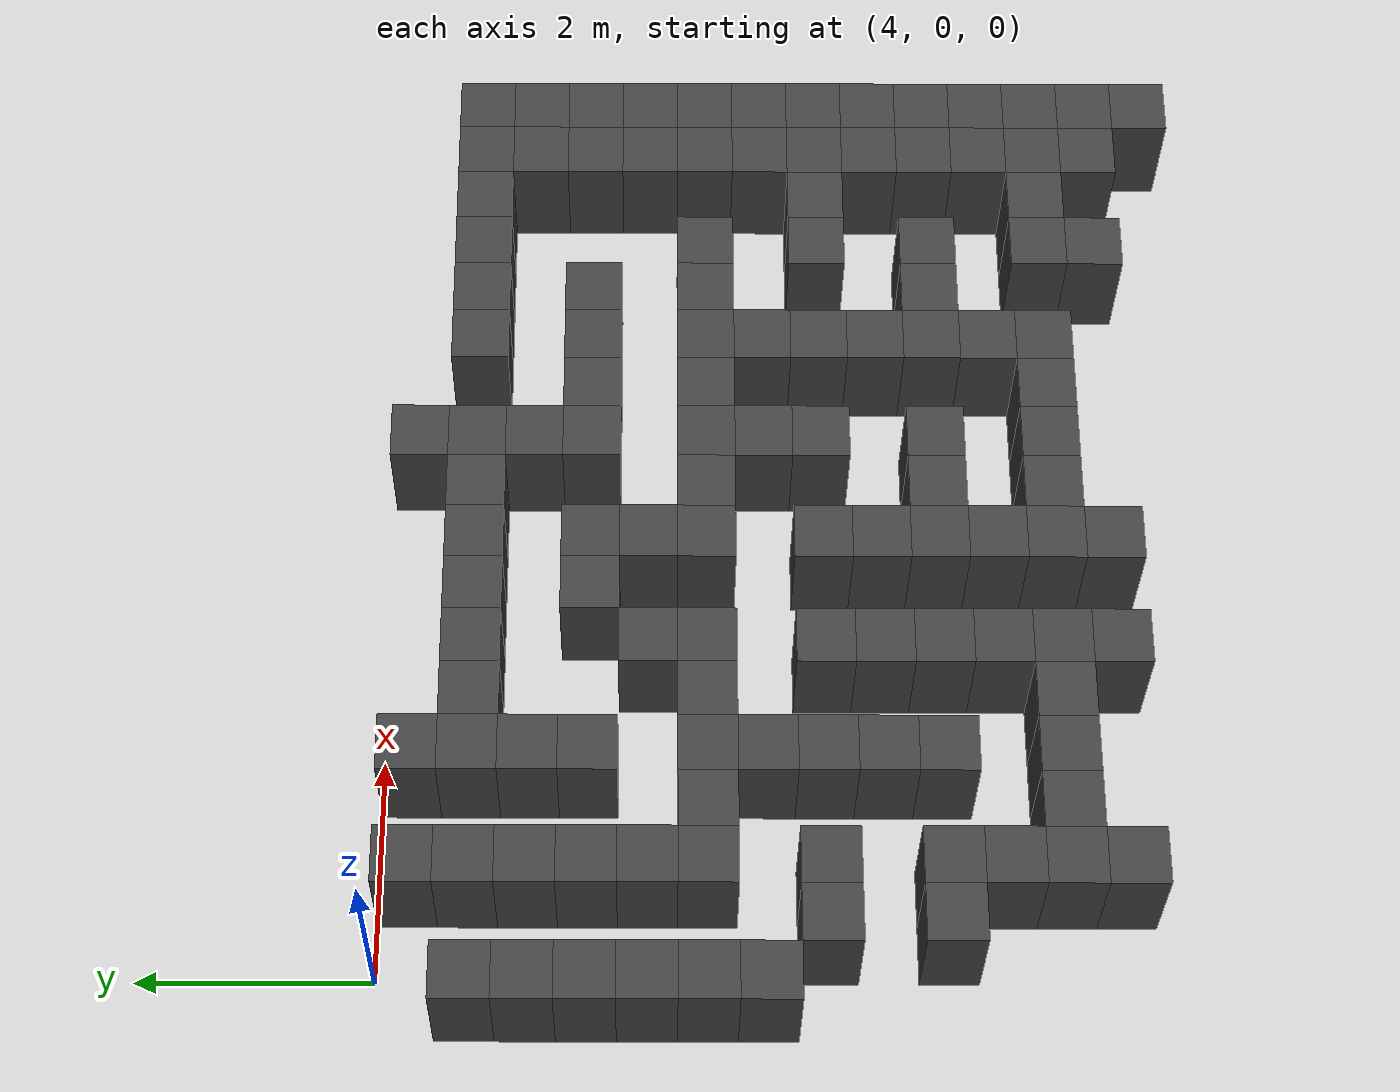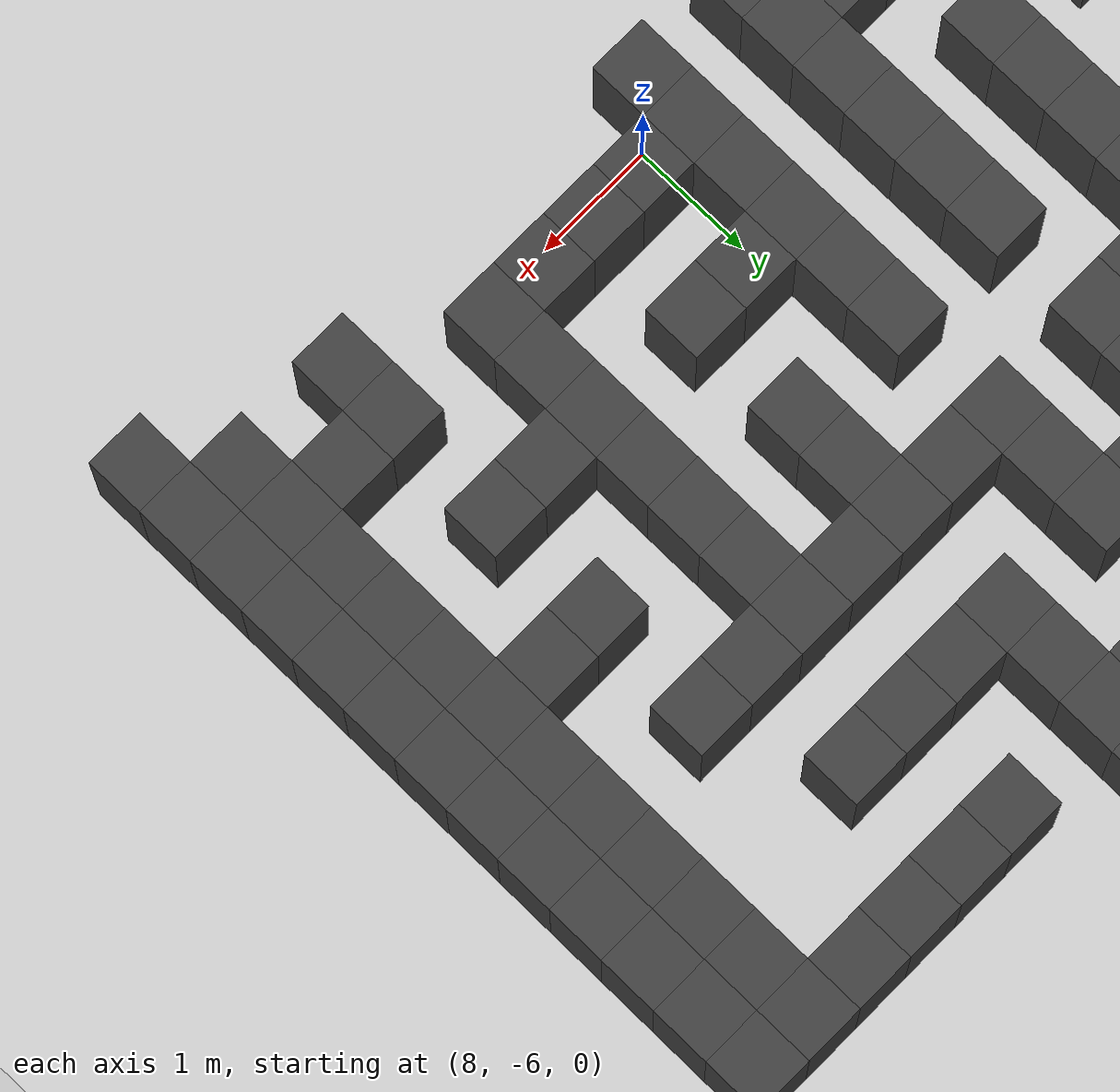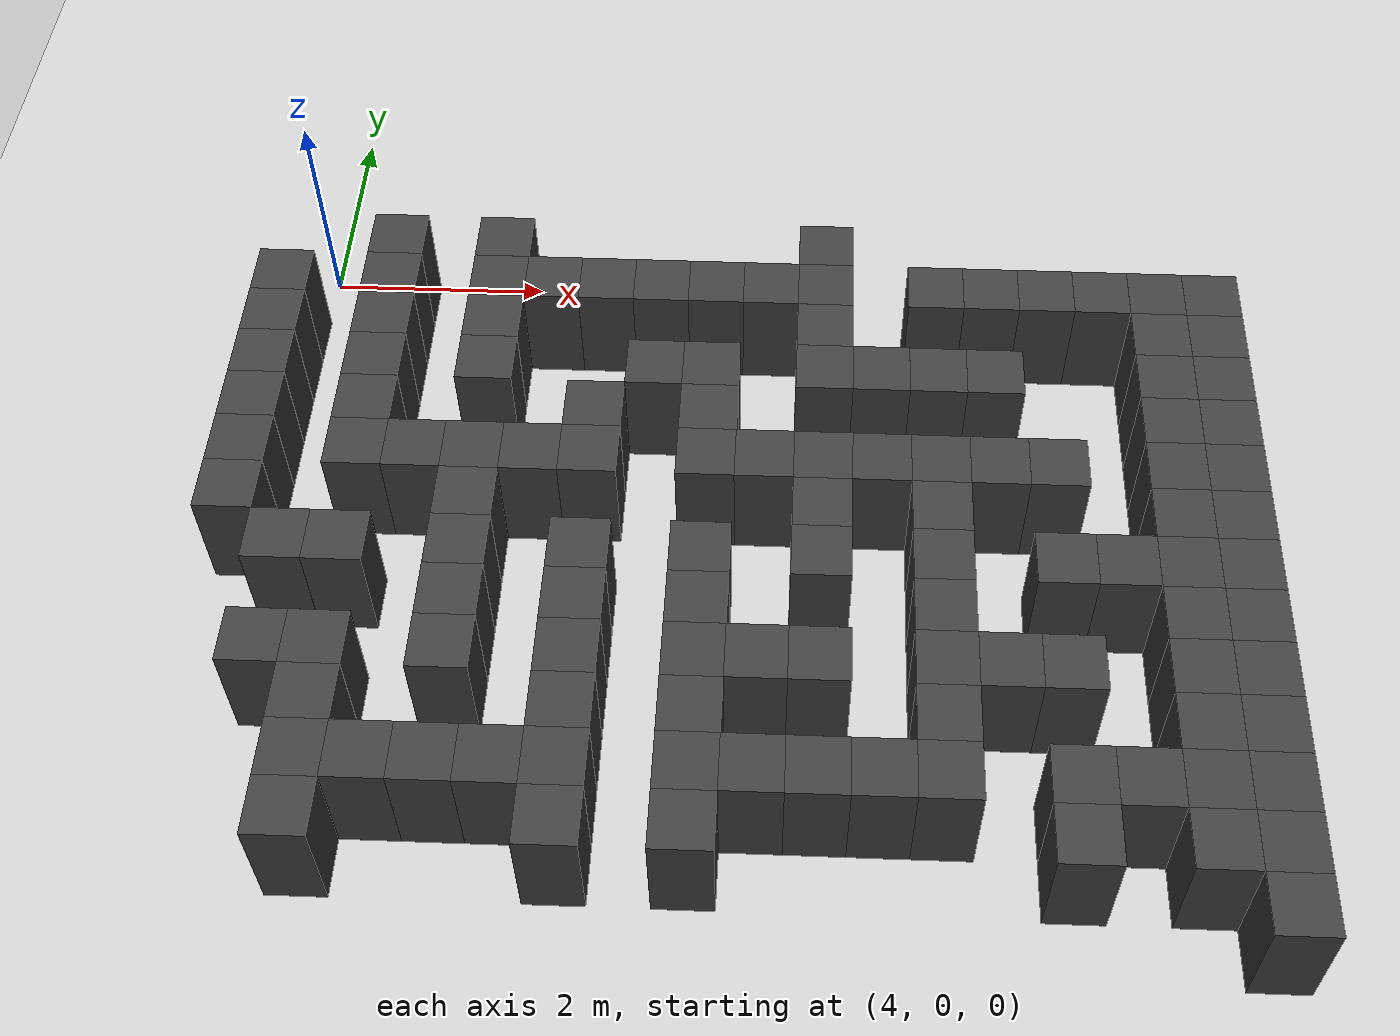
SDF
<sdf version="1.7">
 <world name="map_18505">
  <model name="ground_plane">
   <static>true</static>
   <link name="link">
    <collision name="collision">
     <geometry><plane><normal>0 0 1</normal><size>200 200</size></plane></geometry>
    </collision>
    <visual name="visual">
     <geometry><plane><normal>0 0 1</normal><size>200 200</size></plane></geometry>
     <material><ambient>0.8 0.8 0.8 1</ambient><diffuse>0.8 0.8 0.8 1</diffuse></material>
    </visual>
   </link>
  </model>
  <model name="maze_environment">
   <static>true</static>
   <link name="wall_659">
    <pose>4.750 -0.250 0.500 0 0 0</pose>
    <collision name="col"><geometry><box><size>0.5 0.5 1.0</size></box></geometry></collision>
    <visual name="vis">
     <geometry><box><size>0.5 0.5 1.0</size></box></geometry>
     <material><ambient>0.15 0.15 0.15 1</ambient><diffuse>0.25 0.25 0.25 1</diffuse></material>
    </visual>
   </link>
   <link name="wall_660">
    <pose>5.750 -0.250 0.500 0 0 0</pose>
    <collision name="col"><geometry><box><size>0.5 0.5 1.0</size></box></geometry></collision>
    <visual name="vis">
     <geometry><box><size>0.5 0.5 1.0</size></box></geometry>
     <material><ambient>0.15 0.15 0.15 1</ambient><diffuse>0.25 0.25 0.25 1</diffuse></material>
    </visual>
   </link>
   <link name="wall_661">
    <pose>8.750 -0.250 0.500 0 0 0</pose>
    <collision name="col"><geometry><box><size>0.5 0.5 1.0</size></box></geometry></collision>
    <visual name="vis">
     <geometry><box><size>0.5 0.5 1.0</size></box></geometry>
     <material><ambient>0.15 0.15 0.15 1</ambient><diffuse>0.25 0.25 0.25 1</diffuse></material>
    </visual>
   </link>
   <link name="wall_684">
    <pose>3.750 -0.750 0.500 0 0 0</pose>
    <collision name="col"><geometry><box><size>0.5 0.5 1.0</size></box></geometry></collision>
    <visual name="vis">
     <geometry><box><size>0.5 0.5 1.0</size></box></geometry>
     <material><ambient>0.15 0.15 0.15 1</ambient><diffuse>0.25 0.25 0.25 1</diffuse></material>
    </visual>
   </link>
   <link name="wall_685">
    <pose>4.750 -0.750 0.500 0 0 0</pose>
    <collision name="col"><geometry><box><size>0.5 0.5 1.0</size></box></geometry></collision>
    <visual name="vis">
     <geometry><box><size>0.5 0.5 1.0</size></box></geometry>
     <material><ambient>0.15 0.15 0.15 1</ambient><diffuse>0.25 0.25 0.25 1</diffuse></material>
    </visual>
   </link>
   <link name="wall_686">
    <pose>5.750 -0.750 0.500 0 0 0</pose>
    <collision name="col"><geometry><box><size>0.5 0.5 1.0</size></box></geometry></collision>
    <visual name="vis">
     <geometry><box><size>0.5 0.5 1.0</size></box></geometry>
     <material><ambient>0.15 0.15 0.15 1</ambient><diffuse>0.25 0.25 0.25 1</diffuse></material>
    </visual>
   </link>
   <link name="wall_687">
    <pose>6.250 -0.750 0.500 0 0 0</pose>
    <collision name="col"><geometry><box><size>0.5 0.5 1.0</size></box></geometry></collision>
    <visual name="vis">
     <geometry><box><size>0.5 0.5 1.0</size></box></geometry>
     <material><ambient>0.15 0.15 0.15 1</ambient><diffuse>0.25 0.25 0.25 1</diffuse></material>
    </visual>
   </link>
   <link name="wall_688">
    <pose>6.750 -0.750 0.500 0 0 0</pose>
    <collision name="col"><geometry><box><size>0.5 0.5 1.0</size></box></geometry></collision>
    <visual name="vis">
     <geometry><box><size>0.5 0.5 1.0</size></box></geometry>
     <material><ambient>0.15 0.15 0.15 1</ambient><diffuse>0.25 0.25 0.25 1</diffuse></material>
    </visual>
   </link>
   <link name="wall_689">
    <pose>7.250 -0.750 0.500 0 0 0</pose>
    <collision name="col"><geometry><box><size>0.5 0.5 1.0</size></box></geometry></collision>
    <visual name="vis">
     <geometry><box><size>0.5 0.5 1.0</size></box></geometry>
     <material><ambient>0.15 0.15 0.15 1</ambient><diffuse>0.25 0.25 0.25 1</diffuse></material>
    </visual>
   </link>
   <link name="wall_690">
    <pose>7.750 -0.750 0.500 0 0 0</pose>
    <collision name="col"><geometry><box><size>0.5 0.5 1.0</size></box></geometry></collision>
    <visual name="vis">
     <geometry><box><size>0.5 0.5 1.0</size></box></geometry>
     <material><ambient>0.15 0.15 0.15 1</ambient><diffuse>0.25 0.25 0.25 1</diffuse></material>
    </visual>
   </link>
   <link name="wall_691">
    <pose>8.250 -0.750 0.500 0 0 0</pose>
    <collision name="col"><geometry><box><size>0.5 0.5 1.0</size></box></geometry></collision>
    <visual name="vis">
     <geometry><box><size>0.5 0.5 1.0</size></box></geometry>
     <material><ambient>0.15 0.15 0.15 1</ambient><diffuse>0.25 0.25 0.25 1</diffuse></material>
    </visual>
   </link>
   <link name="wall_692">
    <pose>8.750 -0.750 0.500 0 0 0</pose>
    <collision name="col"><geometry><box><size>0.5 0.5 1.0</size></box></geometry></collision>
    <visual name="vis">
     <geometry><box><size>0.5 0.5 1.0</size></box></geometry>
     <material><ambient>0.15 0.15 0.15 1</ambient><diffuse>0.25 0.25 0.25 1</diffuse></material>
    </visual>
   </link>
   <link name="wall_693">
    <pose>9.750 -0.750 0.500 0 0 0</pose>
    <collision name="col"><geometry><box><size>0.5 0.5 1.0</size></box></geometry></collision>
    <visual name="vis">
     <geometry><box><size>0.5 0.5 1.0</size></box></geometry>
     <material><ambient>0.15 0.15 0.15 1</ambient><diffuse>0.25 0.25 0.25 1</diffuse></material>
    </visual>
   </link>
   <link name="wall_694">
    <pose>10.250 -0.750 0.500 0 0 0</pose>
    <collision name="col"><geometry><box><size>0.5 0.5 1.0</size></box></geometry></collision>
    <visual name="vis">
     <geometry><box><size>0.5 0.5 1.0</size></box></geometry>
     <material><ambient>0.15 0.15 0.15 1</ambient><diffuse>0.25 0.25 0.25 1</diffuse></material>
    </visual>
   </link>
   <link name="wall_695">
    <pose>10.750 -0.750 0.500 0 0 0</pose>
    <collision name="col"><geometry><box><size>0.5 0.5 1.0</size></box></geometry></collision>
    <visual name="vis">
     <geometry><box><size>0.5 0.5 1.0</size></box></geometry>
     <material><ambient>0.15 0.15 0.15 1</ambient><diffuse>0.25 0.25 0.25 1</diffuse></material>
    </visual>
   </link>
   <link name="wall_696">
    <pose>11.250 -0.750 0.500 0 0 0</pose>
    <collision name="col"><geometry><box><size>0.5 0.5 1.0</size></box></geometry></collision>
    <visual name="vis">
     <geometry><box><size>0.5 0.5 1.0</size></box></geometry>
     <material><ambient>0.15 0.15 0.15 1</ambient><diffuse>0.25 0.25 0.25 1</diffuse></material>
    </visual>
   </link>
   <link name="wall_697">
    <pose>11.750 -0.750 0.500 0 0 0</pose>
    <collision name="col"><geometry><box><size>0.5 0.5 1.0</size></box></geometry></collision>
    <visual name="vis">
     <geometry><box><size>0.5 0.5 1.0</size></box></geometry>
     <material><ambient>0.15 0.15 0.15 1</ambient><diffuse>0.25 0.25 0.25 1</diffuse></material>
    </visual>
   </link>
   <link name="wall_698">
    <pose>12.250 -0.750 0.500 0 0 0</pose>
    <collision name="col"><geometry><box><size>0.5 0.5 1.0</size></box></geometry></collision>
    <visual name="vis">
     <geometry><box><size>0.5 0.5 1.0</size></box></geometry>
     <material><ambient>0.15 0.15 0.15 1</ambient><diffuse>0.25 0.25 0.25 1</diffuse></material>
    </visual>
   </link>
   <link name="wall_707">
    <pose>3.750 -1.250 0.500 0 0 0</pose>
    <collision name="col"><geometry><box><size>0.5 0.5 1.0</size></box></geometry></collision>
    <visual name="vis">
     <geometry><box><size>0.5 0.5 1.0</size></box></geometry>
     <material><ambient>0.15 0.15 0.15 1</ambient><diffuse>0.25 0.25 0.25 1</diffuse></material>
    </visual>
   </link>
   <link name="wall_708">
    <pose>4.750 -1.250 0.500 0 0 0</pose>
    <collision name="col"><geometry><box><size>0.5 0.5 1.0</size></box></geometry></collision>
    <visual name="vis">
     <geometry><box><size>0.5 0.5 1.0</size></box></geometry>
     <material><ambient>0.15 0.15 0.15 1</ambient><diffuse>0.25 0.25 0.25 1</diffuse></material>
    </visual>
   </link>
   <link name="wall_709">
    <pose>5.750 -1.250 0.500 0 0 0</pose>
    <collision name="col"><geometry><box><size>0.5 0.5 1.0</size></box></geometry></collision>
    <visual name="vis">
     <geometry><box><size>0.5 0.5 1.0</size></box></geometry>
     <material><ambient>0.15 0.15 0.15 1</ambient><diffuse>0.25 0.25 0.25 1</diffuse></material>
    </visual>
   </link>
   <link name="wall_710">
    <pose>8.750 -1.250 0.500 0 0 0</pose>
    <collision name="col"><geometry><box><size>0.5 0.5 1.0</size></box></geometry></collision>
    <visual name="vis">
     <geometry><box><size>0.5 0.5 1.0</size></box></geometry>
     <material><ambient>0.15 0.15 0.15 1</ambient><diffuse>0.25 0.25 0.25 1</diffuse></material>
    </visual>
   </link>
   <link name="wall_711">
    <pose>11.750 -1.250 0.500 0 0 0</pose>
    <collision name="col"><geometry><box><size>0.5 0.5 1.0</size></box></geometry></collision>
    <visual name="vis">
     <geometry><box><size>0.5 0.5 1.0</size></box></geometry>
     <material><ambient>0.15 0.15 0.15 1</ambient><diffuse>0.25 0.25 0.25 1</diffuse></material>
    </visual>
   </link>
   <link name="wall_712">
    <pose>12.250 -1.250 0.500 0 0 0</pose>
    <collision name="col"><geometry><box><size>0.5 0.5 1.0</size></box></geometry></collision>
    <visual name="vis">
     <geometry><box><size>0.5 0.5 1.0</size></box></geometry>
     <material><ambient>0.15 0.15 0.15 1</ambient><diffuse>0.25 0.25 0.25 1</diffuse></material>
    </visual>
   </link>
   <link name="wall_737">
    <pose>3.750 -1.750 0.500 0 0 0</pose>
    <collision name="col"><geometry><box><size>0.5 0.5 1.0</size></box></geometry></collision>
    <visual name="vis">
     <geometry><box><size>0.5 0.5 1.0</size></box></geometry>
     <material><ambient>0.15 0.15 0.15 1</ambient><diffuse>0.25 0.25 0.25 1</diffuse></material>
    </visual>
   </link>
   <link name="wall_738">
    <pose>4.750 -1.750 0.500 0 0 0</pose>
    <collision name="col"><geometry><box><size>0.5 0.5 1.0</size></box></geometry></collision>
    <visual name="vis">
     <geometry><box><size>0.5 0.5 1.0</size></box></geometry>
     <material><ambient>0.15 0.15 0.15 1</ambient><diffuse>0.25 0.25 0.25 1</diffuse></material>
    </visual>
   </link>
   <link name="wall_739">
    <pose>5.750 -1.750 0.500 0 0 0</pose>
    <collision name="col"><geometry><box><size>0.5 0.5 1.0</size></box></geometry></collision>
    <visual name="vis">
     <geometry><box><size>0.5 0.5 1.0</size></box></geometry>
     <material><ambient>0.15 0.15 0.15 1</ambient><diffuse>0.25 0.25 0.25 1</diffuse></material>
    </visual>
   </link>
   <link name="wall_740">
    <pose>7.250 -1.750 0.500 0 0 0</pose>
    <collision name="col"><geometry><box><size>0.5 0.5 1.0</size></box></geometry></collision>
    <visual name="vis">
     <geometry><box><size>0.5 0.5 1.0</size></box></geometry>
     <material><ambient>0.15 0.15 0.15 1</ambient><diffuse>0.25 0.25 0.25 1</diffuse></material>
    </visual>
   </link>
   <link name="wall_741">
    <pose>7.750 -1.750 0.500 0 0 0</pose>
    <collision name="col"><geometry><box><size>0.5 0.5 1.0</size></box></geometry></collision>
    <visual name="vis">
     <geometry><box><size>0.5 0.5 1.0</size></box></geometry>
     <material><ambient>0.15 0.15 0.15 1</ambient><diffuse>0.25 0.25 0.25 1</diffuse></material>
    </visual>
   </link>
   <link name="wall_742">
    <pose>8.750 -1.750 0.500 0 0 0</pose>
    <collision name="col"><geometry><box><size>0.5 0.5 1.0</size></box></geometry></collision>
    <visual name="vis">
     <geometry><box><size>0.5 0.5 1.0</size></box></geometry>
     <material><ambient>0.15 0.15 0.15 1</ambient><diffuse>0.25 0.25 0.25 1</diffuse></material>
    </visual>
   </link>
   <link name="wall_743">
    <pose>9.250 -1.750 0.500 0 0 0</pose>
    <collision name="col"><geometry><box><size>0.5 0.5 1.0</size></box></geometry></collision>
    <visual name="vis">
     <geometry><box><size>0.5 0.5 1.0</size></box></geometry>
     <material><ambient>0.15 0.15 0.15 1</ambient><diffuse>0.25 0.25 0.25 1</diffuse></material>
    </visual>
   </link>
   <link name="wall_744">
    <pose>9.750 -1.750 0.500 0 0 0</pose>
    <collision name="col"><geometry><box><size>0.5 0.5 1.0</size></box></geometry></collision>
    <visual name="vis">
     <geometry><box><size>0.5 0.5 1.0</size></box></geometry>
     <material><ambient>0.15 0.15 0.15 1</ambient><diffuse>0.25 0.25 0.25 1</diffuse></material>
    </visual>
   </link>
   <link name="wall_745">
    <pose>10.250 -1.750 0.500 0 0 0</pose>
    <collision name="col"><geometry><box><size>0.5 0.5 1.0</size></box></geometry></collision>
    <visual name="vis">
     <geometry><box><size>0.5 0.5 1.0</size></box></geometry>
     <material><ambient>0.15 0.15 0.15 1</ambient><diffuse>0.25 0.25 0.25 1</diffuse></material>
    </visual>
   </link>
   <link name="wall_746">
    <pose>11.750 -1.750 0.500 0 0 0</pose>
    <collision name="col"><geometry><box><size>0.5 0.5 1.0</size></box></geometry></collision>
    <visual name="vis">
     <geometry><box><size>0.5 0.5 1.0</size></box></geometry>
     <material><ambient>0.15 0.15 0.15 1</ambient><diffuse>0.25 0.25 0.25 1</diffuse></material>
    </visual>
   </link>
   <link name="wall_747">
    <pose>12.250 -1.750 0.500 0 0 0</pose>
    <collision name="col"><geometry><box><size>0.5 0.5 1.0</size></box></geometry></collision>
    <visual name="vis">
     <geometry><box><size>0.5 0.5 1.0</size></box></geometry>
     <material><ambient>0.15 0.15 0.15 1</ambient><diffuse>0.25 0.25 0.25 1</diffuse></material>
    </visual>
   </link>
   <link name="wall_753">
    <pose>3.750 -2.250 0.500 0 0 0</pose>
    <collision name="col"><geometry><box><size>0.5 0.5 1.0</size></box></geometry></collision>
    <visual name="vis">
     <geometry><box><size>0.5 0.5 1.0</size></box></geometry>
     <material><ambient>0.15 0.15 0.15 1</ambient><diffuse>0.25 0.25 0.25 1</diffuse></material>
    </visual>
   </link>
   <link name="wall_754">
    <pose>4.750 -2.250 0.500 0 0 0</pose>
    <collision name="col"><geometry><box><size>0.5 0.5 1.0</size></box></geometry></collision>
    <visual name="vis">
     <geometry><box><size>0.5 0.5 1.0</size></box></geometry>
     <material><ambient>0.15 0.15 0.15 1</ambient><diffuse>0.25 0.25 0.25 1</diffuse></material>
    </visual>
   </link>
   <link name="wall_755">
    <pose>6.750 -2.250 0.500 0 0 0</pose>
    <collision name="col"><geometry><box><size>0.5 0.5 1.0</size></box></geometry></collision>
    <visual name="vis">
     <geometry><box><size>0.5 0.5 1.0</size></box></geometry>
     <material><ambient>0.15 0.15 0.15 1</ambient><diffuse>0.25 0.25 0.25 1</diffuse></material>
    </visual>
   </link>
   <link name="wall_756">
    <pose>7.750 -2.250 0.500 0 0 0</pose>
    <collision name="col"><geometry><box><size>0.5 0.5 1.0</size></box></geometry></collision>
    <visual name="vis">
     <geometry><box><size>0.5 0.5 1.0</size></box></geometry>
     <material><ambient>0.15 0.15 0.15 1</ambient><diffuse>0.25 0.25 0.25 1</diffuse></material>
    </visual>
   </link>
   <link name="wall_757">
    <pose>11.750 -2.250 0.500 0 0 0</pose>
    <collision name="col"><geometry><box><size>0.5 0.5 1.0</size></box></geometry></collision>
    <visual name="vis">
     <geometry><box><size>0.5 0.5 1.0</size></box></geometry>
     <material><ambient>0.15 0.15 0.15 1</ambient><diffuse>0.25 0.25 0.25 1</diffuse></material>
    </visual>
   </link>
   <link name="wall_758">
    <pose>12.250 -2.250 0.500 0 0 0</pose>
    <collision name="col"><geometry><box><size>0.5 0.5 1.0</size></box></geometry></collision>
    <visual name="vis">
     <geometry><box><size>0.5 0.5 1.0</size></box></geometry>
     <material><ambient>0.15 0.15 0.15 1</ambient><diffuse>0.25 0.25 0.25 1</diffuse></material>
    </visual>
   </link>
   <link name="wall_784">
    <pose>3.750 -2.750 0.500 0 0 0</pose>
    <collision name="col"><geometry><box><size>0.5 0.5 1.0</size></box></geometry></collision>
    <visual name="vis">
     <geometry><box><size>0.5 0.5 1.0</size></box></geometry>
     <material><ambient>0.15 0.15 0.15 1</ambient><diffuse>0.25 0.25 0.25 1</diffuse></material>
    </visual>
   </link>
   <link name="wall_785">
    <pose>4.750 -2.750 0.500 0 0 0</pose>
    <collision name="col"><geometry><box><size>0.5 0.5 1.0</size></box></geometry></collision>
    <visual name="vis">
     <geometry><box><size>0.5 0.5 1.0</size></box></geometry>
     <material><ambient>0.15 0.15 0.15 1</ambient><diffuse>0.25 0.25 0.25 1</diffuse></material>
    </visual>
   </link>
   <link name="wall_786">
    <pose>5.250 -2.750 0.500 0 0 0</pose>
    <collision name="col"><geometry><box><size>0.5 0.5 1.0</size></box></geometry></collision>
    <visual name="vis">
     <geometry><box><size>0.5 0.5 1.0</size></box></geometry>
     <material><ambient>0.15 0.15 0.15 1</ambient><diffuse>0.25 0.25 0.25 1</diffuse></material>
    </visual>
   </link>
   <link name="wall_787">
    <pose>5.750 -2.750 0.500 0 0 0</pose>
    <collision name="col"><geometry><box><size>0.5 0.5 1.0</size></box></geometry></collision>
    <visual name="vis">
     <geometry><box><size>0.5 0.5 1.0</size></box></geometry>
     <material><ambient>0.15 0.15 0.15 1</ambient><diffuse>0.25 0.25 0.25 1</diffuse></material>
    </visual>
   </link>
   <link name="wall_788">
    <pose>6.250 -2.750 0.500 0 0 0</pose>
    <collision name="col"><geometry><box><size>0.5 0.5 1.0</size></box></geometry></collision>
    <visual name="vis">
     <geometry><box><size>0.5 0.5 1.0</size></box></geometry>
     <material><ambient>0.15 0.15 0.15 1</ambient><diffuse>0.25 0.25 0.25 1</diffuse></material>
    </visual>
   </link>
   <link name="wall_789">
    <pose>6.750 -2.750 0.500 0 0 0</pose>
    <collision name="col"><geometry><box><size>0.5 0.5 1.0</size></box></geometry></collision>
    <visual name="vis">
     <geometry><box><size>0.5 0.5 1.0</size></box></geometry>
     <material><ambient>0.15 0.15 0.15 1</ambient><diffuse>0.25 0.25 0.25 1</diffuse></material>
    </visual>
   </link>
   <link name="wall_790">
    <pose>7.750 -2.750 0.500 0 0 0</pose>
    <collision name="col"><geometry><box><size>0.5 0.5 1.0</size></box></geometry></collision>
    <visual name="vis">
     <geometry><box><size>0.5 0.5 1.0</size></box></geometry>
     <material><ambient>0.15 0.15 0.15 1</ambient><diffuse>0.25 0.25 0.25 1</diffuse></material>
    </visual>
   </link>
   <link name="wall_791">
    <pose>8.250 -2.750 0.500 0 0 0</pose>
    <collision name="col"><geometry><box><size>0.5 0.5 1.0</size></box></geometry></collision>
    <visual name="vis">
     <geometry><box><size>0.5 0.5 1.0</size></box></geometry>
     <material><ambient>0.15 0.15 0.15 1</ambient><diffuse>0.25 0.25 0.25 1</diffuse></material>
    </visual>
   </link>
   <link name="wall_792">
    <pose>8.750 -2.750 0.500 0 0 0</pose>
    <collision name="col"><geometry><box><size>0.5 0.5 1.0</size></box></geometry></collision>
    <visual name="vis">
     <geometry><box><size>0.5 0.5 1.0</size></box></geometry>
     <material><ambient>0.15 0.15 0.15 1</ambient><diffuse>0.25 0.25 0.25 1</diffuse></material>
    </visual>
   </link>
   <link name="wall_793">
    <pose>9.250 -2.750 0.500 0 0 0</pose>
    <collision name="col"><geometry><box><size>0.5 0.5 1.0</size></box></geometry></collision>
    <visual name="vis">
     <geometry><box><size>0.5 0.5 1.0</size></box></geometry>
     <material><ambient>0.15 0.15 0.15 1</ambient><diffuse>0.25 0.25 0.25 1</diffuse></material>
    </visual>
   </link>
   <link name="wall_794">
    <pose>9.750 -2.750 0.500 0 0 0</pose>
    <collision name="col"><geometry><box><size>0.5 0.5 1.0</size></box></geometry></collision>
    <visual name="vis">
     <geometry><box><size>0.5 0.5 1.0</size></box></geometry>
     <material><ambient>0.15 0.15 0.15 1</ambient><diffuse>0.25 0.25 0.25 1</diffuse></material>
    </visual>
   </link>
   <link name="wall_795">
    <pose>10.250 -2.750 0.500 0 0 0</pose>
    <collision name="col"><geometry><box><size>0.5 0.5 1.0</size></box></geometry></collision>
    <visual name="vis">
     <geometry><box><size>0.5 0.5 1.0</size></box></geometry>
     <material><ambient>0.15 0.15 0.15 1</ambient><diffuse>0.25 0.25 0.25 1</diffuse></material>
    </visual>
   </link>
   <link name="wall_796">
    <pose>10.750 -2.750 0.500 0 0 0</pose>
    <collision name="col"><geometry><box><size>0.5 0.5 1.0</size></box></geometry></collision>
    <visual name="vis">
     <geometry><box><size>0.5 0.5 1.0</size></box></geometry>
     <material><ambient>0.15 0.15 0.15 1</ambient><diffuse>0.25 0.25 0.25 1</diffuse></material>
    </visual>
   </link>
   <link name="wall_797">
    <pose>11.750 -2.750 0.500 0 0 0</pose>
    <collision name="col"><geometry><box><size>0.5 0.5 1.0</size></box></geometry></collision>
    <visual name="vis">
     <geometry><box><size>0.5 0.5 1.0</size></box></geometry>
     <material><ambient>0.15 0.15 0.15 1</ambient><diffuse>0.25 0.25 0.25 1</diffuse></material>
    </visual>
   </link>
   <link name="wall_798">
    <pose>12.250 -2.750 0.500 0 0 0</pose>
    <collision name="col"><geometry><box><size>0.5 0.5 1.0</size></box></geometry></collision>
    <visual name="vis">
     <geometry><box><size>0.5 0.5 1.0</size></box></geometry>
     <material><ambient>0.15 0.15 0.15 1</ambient><diffuse>0.25 0.25 0.25 1</diffuse></material>
    </visual>
   </link>
   <link name="wall_805">
    <pose>3.750 -3.250 0.500 0 0 0</pose>
    <collision name="col"><geometry><box><size>0.5 0.5 1.0</size></box></geometry></collision>
    <visual name="vis">
     <geometry><box><size>0.5 0.5 1.0</size></box></geometry>
     <material><ambient>0.15 0.15 0.15 1</ambient><diffuse>0.25 0.25 0.25 1</diffuse></material>
    </visual>
   </link>
   <link name="wall_806">
    <pose>5.750 -3.250 0.500 0 0 0</pose>
    <collision name="col"><geometry><box><size>0.5 0.5 1.0</size></box></geometry></collision>
    <visual name="vis">
     <geometry><box><size>0.5 0.5 1.0</size></box></geometry>
     <material><ambient>0.15 0.15 0.15 1</ambient><diffuse>0.25 0.25 0.25 1</diffuse></material>
    </visual>
   </link>
   <link name="wall_807">
    <pose>8.750 -3.250 0.500 0 0 0</pose>
    <collision name="col"><geometry><box><size>0.5 0.5 1.0</size></box></geometry></collision>
    <visual name="vis">
     <geometry><box><size>0.5 0.5 1.0</size></box></geometry>
     <material><ambient>0.15 0.15 0.15 1</ambient><diffuse>0.25 0.25 0.25 1</diffuse></material>
    </visual>
   </link>
   <link name="wall_808">
    <pose>9.750 -3.250 0.500 0 0 0</pose>
    <collision name="col"><geometry><box><size>0.5 0.5 1.0</size></box></geometry></collision>
    <visual name="vis">
     <geometry><box><size>0.5 0.5 1.0</size></box></geometry>
     <material><ambient>0.15 0.15 0.15 1</ambient><diffuse>0.25 0.25 0.25 1</diffuse></material>
    </visual>
   </link>
   <link name="wall_809">
    <pose>11.750 -3.250 0.500 0 0 0</pose>
    <collision name="col"><geometry><box><size>0.5 0.5 1.0</size></box></geometry></collision>
    <visual name="vis">
     <geometry><box><size>0.5 0.5 1.0</size></box></geometry>
     <material><ambient>0.15 0.15 0.15 1</ambient><diffuse>0.25 0.25 0.25 1</diffuse></material>
    </visual>
   </link>
   <link name="wall_810">
    <pose>12.250 -3.250 0.500 0 0 0</pose>
    <collision name="col"><geometry><box><size>0.5 0.5 1.0</size></box></geometry></collision>
    <visual name="vis">
     <geometry><box><size>0.5 0.5 1.0</size></box></geometry>
     <material><ambient>0.15 0.15 0.15 1</ambient><diffuse>0.25 0.25 0.25 1</diffuse></material>
    </visual>
   </link>
   <link name="wall_835">
    <pose>4.250 -3.750 0.500 0 0 0</pose>
    <collision name="col"><geometry><box><size>0.5 0.5 1.0</size></box></geometry></collision>
    <visual name="vis">
     <geometry><box><size>0.5 0.5 1.0</size></box></geometry>
     <material><ambient>0.15 0.15 0.15 1</ambient><diffuse>0.25 0.25 0.25 1</diffuse></material>
    </visual>
   </link>
   <link name="wall_836">
    <pose>4.750 -3.750 0.500 0 0 0</pose>
    <collision name="col"><geometry><box><size>0.5 0.5 1.0</size></box></geometry></collision>
    <visual name="vis">
     <geometry><box><size>0.5 0.5 1.0</size></box></geometry>
     <material><ambient>0.15 0.15 0.15 1</ambient><diffuse>0.25 0.25 0.25 1</diffuse></material>
    </visual>
   </link>
   <link name="wall_837">
    <pose>5.750 -3.750 0.500 0 0 0</pose>
    <collision name="col"><geometry><box><size>0.5 0.5 1.0</size></box></geometry></collision>
    <visual name="vis">
     <geometry><box><size>0.5 0.5 1.0</size></box></geometry>
     <material><ambient>0.15 0.15 0.15 1</ambient><diffuse>0.25 0.25 0.25 1</diffuse></material>
    </visual>
   </link>
   <link name="wall_838">
    <pose>6.750 -3.750 0.500 0 0 0</pose>
    <collision name="col"><geometry><box><size>0.5 0.5 1.0</size></box></geometry></collision>
    <visual name="vis">
     <geometry><box><size>0.5 0.5 1.0</size></box></geometry>
     <material><ambient>0.15 0.15 0.15 1</ambient><diffuse>0.25 0.25 0.25 1</diffuse></material>
    </visual>
   </link>
   <link name="wall_839">
    <pose>7.750 -3.750 0.500 0 0 0</pose>
    <collision name="col"><geometry><box><size>0.5 0.5 1.0</size></box></geometry></collision>
    <visual name="vis">
     <geometry><box><size>0.5 0.5 1.0</size></box></geometry>
     <material><ambient>0.15 0.15 0.15 1</ambient><diffuse>0.25 0.25 0.25 1</diffuse></material>
    </visual>
   </link>
   <link name="wall_840">
    <pose>8.750 -3.750 0.500 0 0 0</pose>
    <collision name="col"><geometry><box><size>0.5 0.5 1.0</size></box></geometry></collision>
    <visual name="vis">
     <geometry><box><size>0.5 0.5 1.0</size></box></geometry>
     <material><ambient>0.15 0.15 0.15 1</ambient><diffuse>0.25 0.25 0.25 1</diffuse></material>
    </visual>
   </link>
   <link name="wall_841">
    <pose>9.750 -3.750 0.500 0 0 0</pose>
    <collision name="col"><geometry><box><size>0.5 0.5 1.0</size></box></geometry></collision>
    <visual name="vis">
     <geometry><box><size>0.5 0.5 1.0</size></box></geometry>
     <material><ambient>0.15 0.15 0.15 1</ambient><diffuse>0.25 0.25 0.25 1</diffuse></material>
    </visual>
   </link>
   <link name="wall_842">
    <pose>10.750 -3.750 0.500 0 0 0</pose>
    <collision name="col"><geometry><box><size>0.5 0.5 1.0</size></box></geometry></collision>
    <visual name="vis">
     <geometry><box><size>0.5 0.5 1.0</size></box></geometry>
     <material><ambient>0.15 0.15 0.15 1</ambient><diffuse>0.25 0.25 0.25 1</diffuse></material>
    </visual>
   </link>
   <link name="wall_843">
    <pose>11.250 -3.750 0.500 0 0 0</pose>
    <collision name="col"><geometry><box><size>0.5 0.5 1.0</size></box></geometry></collision>
    <visual name="vis">
     <geometry><box><size>0.5 0.5 1.0</size></box></geometry>
     <material><ambient>0.15 0.15 0.15 1</ambient><diffuse>0.25 0.25 0.25 1</diffuse></material>
    </visual>
   </link>
   <link name="wall_844">
    <pose>11.750 -3.750 0.500 0 0 0</pose>
    <collision name="col"><geometry><box><size>0.5 0.5 1.0</size></box></geometry></collision>
    <visual name="vis">
     <geometry><box><size>0.5 0.5 1.0</size></box></geometry>
     <material><ambient>0.15 0.15 0.15 1</ambient><diffuse>0.25 0.25 0.25 1</diffuse></material>
    </visual>
   </link>
   <link name="wall_845">
    <pose>12.250 -3.750 0.500 0 0 0</pose>
    <collision name="col"><geometry><box><size>0.5 0.5 1.0</size></box></geometry></collision>
    <visual name="vis">
     <geometry><box><size>0.5 0.5 1.0</size></box></geometry>
     <material><ambient>0.15 0.15 0.15 1</ambient><diffuse>0.25 0.25 0.25 1</diffuse></material>
    </visual>
   </link>
   <link name="wall_856">
    <pose>5.750 -4.250 0.500 0 0 0</pose>
    <collision name="col"><geometry><box><size>0.5 0.5 1.0</size></box></geometry></collision>
    <visual name="vis">
     <geometry><box><size>0.5 0.5 1.0</size></box></geometry>
     <material><ambient>0.15 0.15 0.15 1</ambient><diffuse>0.25 0.25 0.25 1</diffuse></material>
    </visual>
   </link>
   <link name="wall_857">
    <pose>6.750 -4.250 0.500 0 0 0</pose>
    <collision name="col"><geometry><box><size>0.5 0.5 1.0</size></box></geometry></collision>
    <visual name="vis">
     <geometry><box><size>0.5 0.5 1.0</size></box></geometry>
     <material><ambient>0.15 0.15 0.15 1</ambient><diffuse>0.25 0.25 0.25 1</diffuse></material>
    </visual>
   </link>
   <link name="wall_858">
    <pose>7.750 -4.250 0.500 0 0 0</pose>
    <collision name="col"><geometry><box><size>0.5 0.5 1.0</size></box></geometry></collision>
    <visual name="vis">
     <geometry><box><size>0.5 0.5 1.0</size></box></geometry>
     <material><ambient>0.15 0.15 0.15 1</ambient><diffuse>0.25 0.25 0.25 1</diffuse></material>
    </visual>
   </link>
   <link name="wall_859">
    <pose>9.750 -4.250 0.500 0 0 0</pose>
    <collision name="col"><geometry><box><size>0.5 0.5 1.0</size></box></geometry></collision>
    <visual name="vis">
     <geometry><box><size>0.5 0.5 1.0</size></box></geometry>
     <material><ambient>0.15 0.15 0.15 1</ambient><diffuse>0.25 0.25 0.25 1</diffuse></material>
    </visual>
   </link>
   <link name="wall_860">
    <pose>11.750 -4.250 0.500 0 0 0</pose>
    <collision name="col"><geometry><box><size>0.5 0.5 1.0</size></box></geometry></collision>
    <visual name="vis">
     <geometry><box><size>0.5 0.5 1.0</size></box></geometry>
     <material><ambient>0.15 0.15 0.15 1</ambient><diffuse>0.25 0.25 0.25 1</diffuse></material>
    </visual>
   </link>
   <link name="wall_861">
    <pose>12.250 -4.250 0.500 0 0 0</pose>
    <collision name="col"><geometry><box><size>0.5 0.5 1.0</size></box></geometry></collision>
    <visual name="vis">
     <geometry><box><size>0.5 0.5 1.0</size></box></geometry>
     <material><ambient>0.15 0.15 0.15 1</ambient><diffuse>0.25 0.25 0.25 1</diffuse></material>
    </visual>
   </link>
   <link name="wall_882">
    <pose>4.250 -4.750 0.500 0 0 0</pose>
    <collision name="col"><geometry><box><size>0.5 0.5 1.0</size></box></geometry></collision>
    <visual name="vis">
     <geometry><box><size>0.5 0.5 1.0</size></box></geometry>
     <material><ambient>0.15 0.15 0.15 1</ambient><diffuse>0.25 0.25 0.25 1</diffuse></material>
    </visual>
   </link>
   <link name="wall_883">
    <pose>4.750 -4.750 0.500 0 0 0</pose>
    <collision name="col"><geometry><box><size>0.5 0.5 1.0</size></box></geometry></collision>
    <visual name="vis">
     <geometry><box><size>0.5 0.5 1.0</size></box></geometry>
     <material><ambient>0.15 0.15 0.15 1</ambient><diffuse>0.25 0.25 0.25 1</diffuse></material>
    </visual>
   </link>
   <link name="wall_884">
    <pose>5.750 -4.750 0.500 0 0 0</pose>
    <collision name="col"><geometry><box><size>0.5 0.5 1.0</size></box></geometry></collision>
    <visual name="vis">
     <geometry><box><size>0.5 0.5 1.0</size></box></geometry>
     <material><ambient>0.15 0.15 0.15 1</ambient><diffuse>0.25 0.25 0.25 1</diffuse></material>
    </visual>
   </link>
   <link name="wall_885">
    <pose>6.750 -4.750 0.500 0 0 0</pose>
    <collision name="col"><geometry><box><size>0.5 0.5 1.0</size></box></geometry></collision>
    <visual name="vis">
     <geometry><box><size>0.5 0.5 1.0</size></box></geometry>
     <material><ambient>0.15 0.15 0.15 1</ambient><diffuse>0.25 0.25 0.25 1</diffuse></material>
    </visual>
   </link>
   <link name="wall_886">
    <pose>7.750 -4.750 0.500 0 0 0</pose>
    <collision name="col"><geometry><box><size>0.5 0.5 1.0</size></box></geometry></collision>
    <visual name="vis">
     <geometry><box><size>0.5 0.5 1.0</size></box></geometry>
     <material><ambient>0.15 0.15 0.15 1</ambient><diffuse>0.25 0.25 0.25 1</diffuse></material>
    </visual>
   </link>
   <link name="wall_887">
    <pose>8.250 -4.750 0.500 0 0 0</pose>
    <collision name="col"><geometry><box><size>0.5 0.5 1.0</size></box></geometry></collision>
    <visual name="vis">
     <geometry><box><size>0.5 0.5 1.0</size></box></geometry>
     <material><ambient>0.15 0.15 0.15 1</ambient><diffuse>0.25 0.25 0.25 1</diffuse></material>
    </visual>
   </link>
   <link name="wall_888">
    <pose>8.750 -4.750 0.500 0 0 0</pose>
    <collision name="col"><geometry><box><size>0.5 0.5 1.0</size></box></geometry></collision>
    <visual name="vis">
     <geometry><box><size>0.5 0.5 1.0</size></box></geometry>
     <material><ambient>0.15 0.15 0.15 1</ambient><diffuse>0.25 0.25 0.25 1</diffuse></material>
    </visual>
   </link>
   <link name="wall_889">
    <pose>9.750 -4.750 0.500 0 0 0</pose>
    <collision name="col"><geometry><box><size>0.5 0.5 1.0</size></box></geometry></collision>
    <visual name="vis">
     <geometry><box><size>0.5 0.5 1.0</size></box></geometry>
     <material><ambient>0.15 0.15 0.15 1</ambient><diffuse>0.25 0.25 0.25 1</diffuse></material>
    </visual>
   </link>
   <link name="wall_890">
    <pose>10.250 -4.750 0.500 0 0 0</pose>
    <collision name="col"><geometry><box><size>0.5 0.5 1.0</size></box></geometry></collision>
    <visual name="vis">
     <geometry><box><size>0.5 0.5 1.0</size></box></geometry>
     <material><ambient>0.15 0.15 0.15 1</ambient><diffuse>0.25 0.25 0.25 1</diffuse></material>
    </visual>
   </link>
   <link name="wall_891">
    <pose>10.750 -4.750 0.500 0 0 0</pose>
    <collision name="col"><geometry><box><size>0.5 0.5 1.0</size></box></geometry></collision>
    <visual name="vis">
     <geometry><box><size>0.5 0.5 1.0</size></box></geometry>
     <material><ambient>0.15 0.15 0.15 1</ambient><diffuse>0.25 0.25 0.25 1</diffuse></material>
    </visual>
   </link>
   <link name="wall_892">
    <pose>11.750 -4.750 0.500 0 0 0</pose>
    <collision name="col"><geometry><box><size>0.5 0.5 1.0</size></box></geometry></collision>
    <visual name="vis">
     <geometry><box><size>0.5 0.5 1.0</size></box></geometry>
     <material><ambient>0.15 0.15 0.15 1</ambient><diffuse>0.25 0.25 0.25 1</diffuse></material>
    </visual>
   </link>
   <link name="wall_893">
    <pose>12.250 -4.750 0.500 0 0 0</pose>
    <collision name="col"><geometry><box><size>0.5 0.5 1.0</size></box></geometry></collision>
    <visual name="vis">
     <geometry><box><size>0.5 0.5 1.0</size></box></geometry>
     <material><ambient>0.15 0.15 0.15 1</ambient><diffuse>0.25 0.25 0.25 1</diffuse></material>
    </visual>
   </link>
   <link name="wall_904">
    <pose>4.750 -5.250 0.500 0 0 0</pose>
    <collision name="col"><geometry><box><size>0.5 0.5 1.0</size></box></geometry></collision>
    <visual name="vis">
     <geometry><box><size>0.5 0.5 1.0</size></box></geometry>
     <material><ambient>0.15 0.15 0.15 1</ambient><diffuse>0.25 0.25 0.25 1</diffuse></material>
    </visual>
   </link>
   <link name="wall_905">
    <pose>6.750 -5.250 0.500 0 0 0</pose>
    <collision name="col"><geometry><box><size>0.5 0.5 1.0</size></box></geometry></collision>
    <visual name="vis">
     <geometry><box><size>0.5 0.5 1.0</size></box></geometry>
     <material><ambient>0.15 0.15 0.15 1</ambient><diffuse>0.25 0.25 0.25 1</diffuse></material>
    </visual>
   </link>
   <link name="wall_906">
    <pose>7.750 -5.250 0.500 0 0 0</pose>
    <collision name="col"><geometry><box><size>0.5 0.5 1.0</size></box></geometry></collision>
    <visual name="vis">
     <geometry><box><size>0.5 0.5 1.0</size></box></geometry>
     <material><ambient>0.15 0.15 0.15 1</ambient><diffuse>0.25 0.25 0.25 1</diffuse></material>
    </visual>
   </link>
   <link name="wall_907">
    <pose>9.750 -5.250 0.500 0 0 0</pose>
    <collision name="col"><geometry><box><size>0.5 0.5 1.0</size></box></geometry></collision>
    <visual name="vis">
     <geometry><box><size>0.5 0.5 1.0</size></box></geometry>
     <material><ambient>0.15 0.15 0.15 1</ambient><diffuse>0.25 0.25 0.25 1</diffuse></material>
    </visual>
   </link>
   <link name="wall_908">
    <pose>11.750 -5.250 0.500 0 0 0</pose>
    <collision name="col"><geometry><box><size>0.5 0.5 1.0</size></box></geometry></collision>
    <visual name="vis">
     <geometry><box><size>0.5 0.5 1.0</size></box></geometry>
     <material><ambient>0.15 0.15 0.15 1</ambient><diffuse>0.25 0.25 0.25 1</diffuse></material>
    </visual>
   </link>
   <link name="wall_909">
    <pose>12.250 -5.250 0.500 0 0 0</pose>
    <collision name="col"><geometry><box><size>0.5 0.5 1.0</size></box></geometry></collision>
    <visual name="vis">
     <geometry><box><size>0.5 0.5 1.0</size></box></geometry>
     <material><ambient>0.15 0.15 0.15 1</ambient><diffuse>0.25 0.25 0.25 1</diffuse></material>
    </visual>
   </link>
   <link name="wall_932">
    <pose>4.750 -5.750 0.500 0 0 0</pose>
    <collision name="col"><geometry><box><size>0.5 0.5 1.0</size></box></geometry></collision>
    <visual name="vis">
     <geometry><box><size>0.5 0.5 1.0</size></box></geometry>
     <material><ambient>0.15 0.15 0.15 1</ambient><diffuse>0.25 0.25 0.25 1</diffuse></material>
    </visual>
   </link>
   <link name="wall_933">
    <pose>5.250 -5.750 0.500 0 0 0</pose>
    <collision name="col"><geometry><box><size>0.5 0.5 1.0</size></box></geometry></collision>
    <visual name="vis">
     <geometry><box><size>0.5 0.5 1.0</size></box></geometry>
     <material><ambient>0.15 0.15 0.15 1</ambient><diffuse>0.25 0.25 0.25 1</diffuse></material>
    </visual>
   </link>
   <link name="wall_934">
    <pose>5.750 -5.750 0.500 0 0 0</pose>
    <collision name="col"><geometry><box><size>0.5 0.5 1.0</size></box></geometry></collision>
    <visual name="vis">
     <geometry><box><size>0.5 0.5 1.0</size></box></geometry>
     <material><ambient>0.15 0.15 0.15 1</ambient><diffuse>0.25 0.25 0.25 1</diffuse></material>
    </visual>
   </link>
   <link name="wall_935">
    <pose>6.250 -5.750 0.500 0 0 0</pose>
    <collision name="col"><geometry><box><size>0.5 0.5 1.0</size></box></geometry></collision>
    <visual name="vis">
     <geometry><box><size>0.5 0.5 1.0</size></box></geometry>
     <material><ambient>0.15 0.15 0.15 1</ambient><diffuse>0.25 0.25 0.25 1</diffuse></material>
    </visual>
   </link>
   <link name="wall_936">
    <pose>6.750 -5.750 0.500 0 0 0</pose>
    <collision name="col"><geometry><box><size>0.5 0.5 1.0</size></box></geometry></collision>
    <visual name="vis">
     <geometry><box><size>0.5 0.5 1.0</size></box></geometry>
     <material><ambient>0.15 0.15 0.15 1</ambient><diffuse>0.25 0.25 0.25 1</diffuse></material>
    </visual>
   </link>
   <link name="wall_937">
    <pose>7.750 -5.750 0.500 0 0 0</pose>
    <collision name="col"><geometry><box><size>0.5 0.5 1.0</size></box></geometry></collision>
    <visual name="vis">
     <geometry><box><size>0.5 0.5 1.0</size></box></geometry>
     <material><ambient>0.15 0.15 0.15 1</ambient><diffuse>0.25 0.25 0.25 1</diffuse></material>
    </visual>
   </link>
   <link name="wall_938">
    <pose>8.250 -5.750 0.500 0 0 0</pose>
    <collision name="col"><geometry><box><size>0.5 0.5 1.0</size></box></geometry></collision>
    <visual name="vis">
     <geometry><box><size>0.5 0.5 1.0</size></box></geometry>
     <material><ambient>0.15 0.15 0.15 1</ambient><diffuse>0.25 0.25 0.25 1</diffuse></material>
    </visual>
   </link>
   <link name="wall_939">
    <pose>8.750 -5.750 0.500 0 0 0</pose>
    <collision name="col"><geometry><box><size>0.5 0.5 1.0</size></box></geometry></collision>
    <visual name="vis">
     <geometry><box><size>0.5 0.5 1.0</size></box></geometry>
     <material><ambient>0.15 0.15 0.15 1</ambient><diffuse>0.25 0.25 0.25 1</diffuse></material>
    </visual>
   </link>
   <link name="wall_940">
    <pose>9.250 -5.750 0.500 0 0 0</pose>
    <collision name="col"><geometry><box><size>0.5 0.5 1.0</size></box></geometry></collision>
    <visual name="vis">
     <geometry><box><size>0.5 0.5 1.0</size></box></geometry>
     <material><ambient>0.15 0.15 0.15 1</ambient><diffuse>0.25 0.25 0.25 1</diffuse></material>
    </visual>
   </link>
   <link name="wall_941">
    <pose>9.750 -5.750 0.500 0 0 0</pose>
    <collision name="col"><geometry><box><size>0.5 0.5 1.0</size></box></geometry></collision>
    <visual name="vis">
     <geometry><box><size>0.5 0.5 1.0</size></box></geometry>
     <material><ambient>0.15 0.15 0.15 1</ambient><diffuse>0.25 0.25 0.25 1</diffuse></material>
    </visual>
   </link>
   <link name="wall_942">
    <pose>10.750 -5.750 0.500 0 0 0</pose>
    <collision name="col"><geometry><box><size>0.5 0.5 1.0</size></box></geometry></collision>
    <visual name="vis">
     <geometry><box><size>0.5 0.5 1.0</size></box></geometry>
     <material><ambient>0.15 0.15 0.15 1</ambient><diffuse>0.25 0.25 0.25 1</diffuse></material>
    </visual>
   </link>
   <link name="wall_943">
    <pose>11.250 -5.750 0.500 0 0 0</pose>
    <collision name="col"><geometry><box><size>0.5 0.5 1.0</size></box></geometry></collision>
    <visual name="vis">
     <geometry><box><size>0.5 0.5 1.0</size></box></geometry>
     <material><ambient>0.15 0.15 0.15 1</ambient><diffuse>0.25 0.25 0.25 1</diffuse></material>
    </visual>
   </link>
   <link name="wall_944">
    <pose>11.750 -5.750 0.500 0 0 0</pose>
    <collision name="col"><geometry><box><size>0.5 0.5 1.0</size></box></geometry></collision>
    <visual name="vis">
     <geometry><box><size>0.5 0.5 1.0</size></box></geometry>
     <material><ambient>0.15 0.15 0.15 1</ambient><diffuse>0.25 0.25 0.25 1</diffuse></material>
    </visual>
   </link>
   <link name="wall_945">
    <pose>12.250 -5.750 0.500 0 0 0</pose>
    <collision name="col"><geometry><box><size>0.5 0.5 1.0</size></box></geometry></collision>
    <visual name="vis">
     <geometry><box><size>0.5 0.5 1.0</size></box></geometry>
     <material><ambient>0.15 0.15 0.15 1</ambient><diffuse>0.25 0.25 0.25 1</diffuse></material>
    </visual>
   </link>
   <link name="wall_952">
    <pose>4.750 -6.250 0.500 0 0 0</pose>
    <collision name="col"><geometry><box><size>0.5 0.5 1.0</size></box></geometry></collision>
    <visual name="vis">
     <geometry><box><size>0.5 0.5 1.0</size></box></geometry>
     <material><ambient>0.15 0.15 0.15 1</ambient><diffuse>0.25 0.25 0.25 1</diffuse></material>
    </visual>
   </link>
   <link name="wall_953">
    <pose>6.750 -6.250 0.500 0 0 0</pose>
    <collision name="col"><geometry><box><size>0.5 0.5 1.0</size></box></geometry></collision>
    <visual name="vis">
     <geometry><box><size>0.5 0.5 1.0</size></box></geometry>
     <material><ambient>0.15 0.15 0.15 1</ambient><diffuse>0.25 0.25 0.25 1</diffuse></material>
    </visual>
   </link>
   <link name="wall_954">
    <pose>7.750 -6.250 0.500 0 0 0</pose>
    <collision name="col"><geometry><box><size>0.5 0.5 1.0</size></box></geometry></collision>
    <visual name="vis">
     <geometry><box><size>0.5 0.5 1.0</size></box></geometry>
     <material><ambient>0.15 0.15 0.15 1</ambient><diffuse>0.25 0.25 0.25 1</diffuse></material>
    </visual>
   </link>
   <link name="wall_955">
    <pose>10.750 -6.250 0.500 0 0 0</pose>
    <collision name="col"><geometry><box><size>0.5 0.5 1.0</size></box></geometry></collision>
    <visual name="vis">
     <geometry><box><size>0.5 0.5 1.0</size></box></geometry>
     <material><ambient>0.15 0.15 0.15 1</ambient><diffuse>0.25 0.25 0.25 1</diffuse></material>
    </visual>
   </link>
   <link name="wall_956">
    <pose>11.750 -6.250 0.500 0 0 0</pose>
    <collision name="col"><geometry><box><size>0.5 0.5 1.0</size></box></geometry></collision>
    <visual name="vis">
     <geometry><box><size>0.5 0.5 1.0</size></box></geometry>
     <material><ambient>0.15 0.15 0.15 1</ambient><diffuse>0.25 0.25 0.25 1</diffuse></material>
    </visual>
   </link>
   <link name="wall_957">
    <pose>12.250 -6.250 0.500 0 0 0</pose>
    <collision name="col"><geometry><box><size>0.5 0.5 1.0</size></box></geometry></collision>
    <visual name="vis">
     <geometry><box><size>0.5 0.5 1.0</size></box></geometry>
     <material><ambient>0.15 0.15 0.15 1</ambient><diffuse>0.25 0.25 0.25 1</diffuse></material>
    </visual>
   </link>
   <link name="wall_991">
    <pose>12.250 -6.750 0.500 0 0 0</pose>
    <collision name="col"><geometry><box><size>0.5 0.5 1.0</size></box></geometry></collision>
    <visual name="vis">
     <geometry><box><size>0.5 0.5 1.0</size></box></geometry>
     <material><ambient>0.15 0.15 0.15 1</ambient><diffuse>0.25 0.25 0.25 1</diffuse></material>
    </visual>
   </link>
  </model>
 </world>
</sdf>
